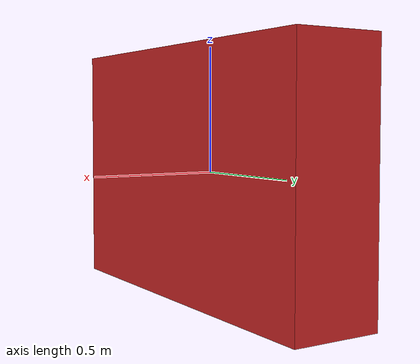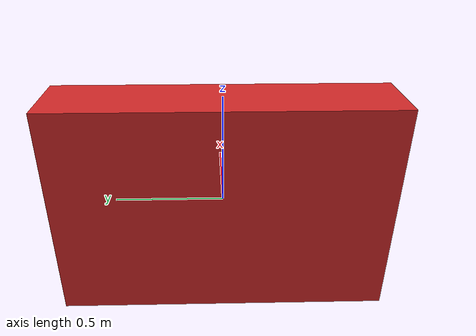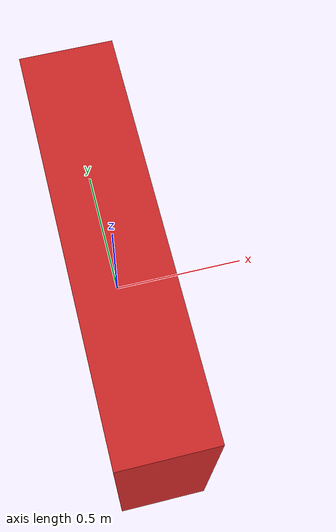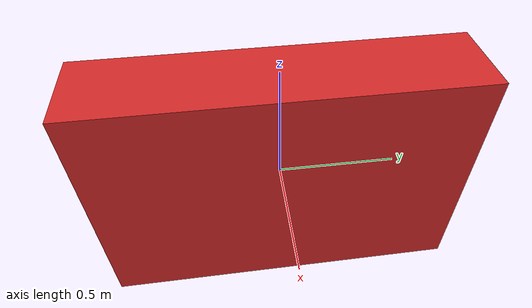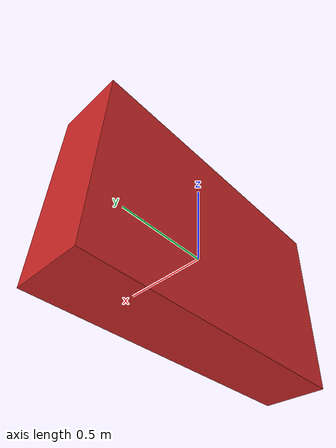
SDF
<?xml version="1.0"?>
<sdf version="1.8">
  <model name="dynnav_g1_corridor_blocker">
    <static>true</static>
    <link name="link">
      <collision name="collision">
        <geometry><box><size>0.35 1.55 1.0</size></box></geometry>
      </collision>
      <visual name="visual">
        <geometry><box><size>0.35 1.55 1.0</size></box></geometry>
        <material>
          <ambient>0.8 0.15 0.15 1</ambient>
          <diffuse>0.8 0.15 0.15 1</diffuse>
        </material>
      </visual>
    </link>
  </model>
</sdf>
